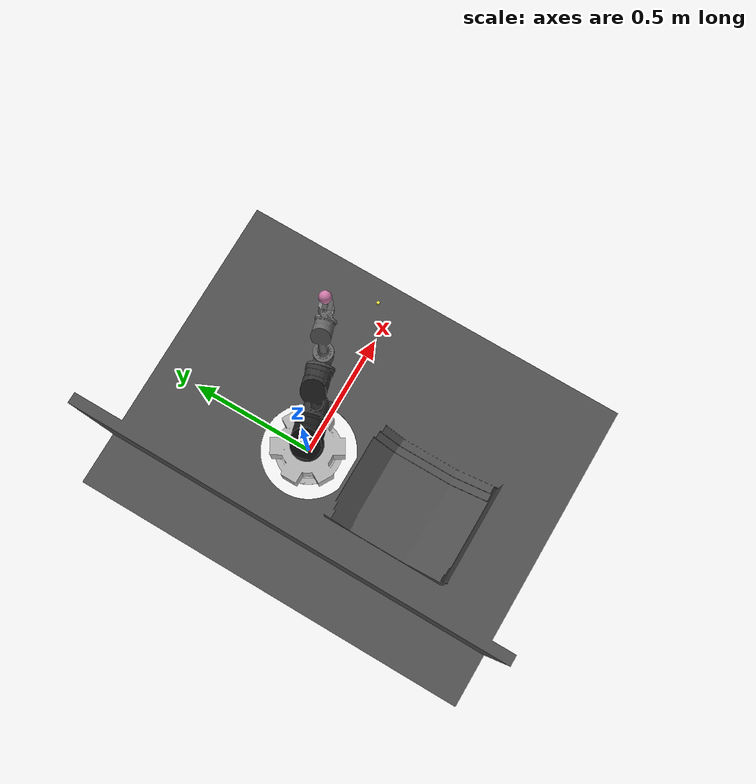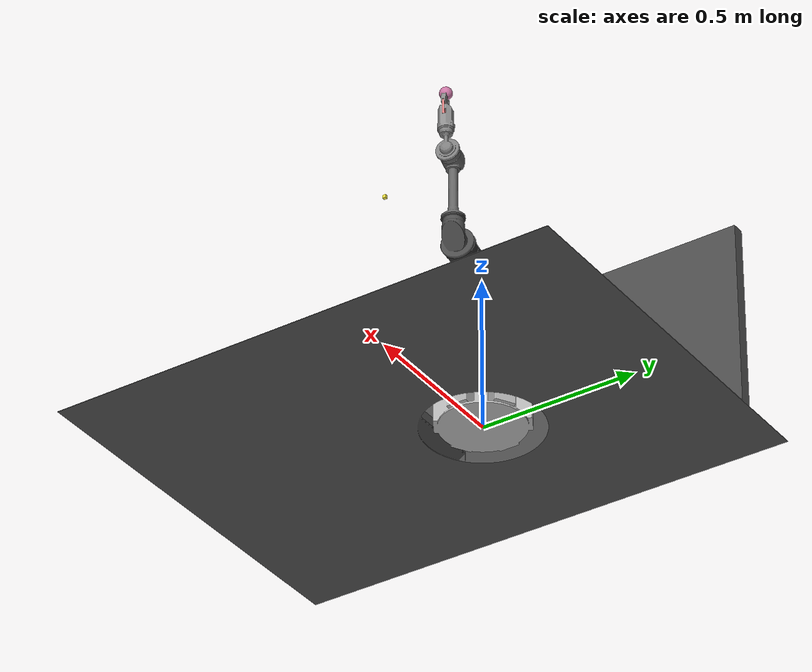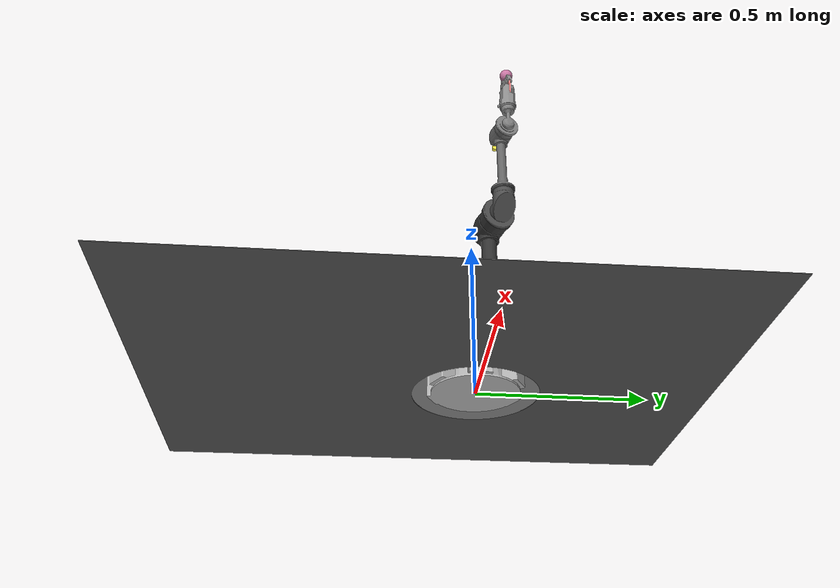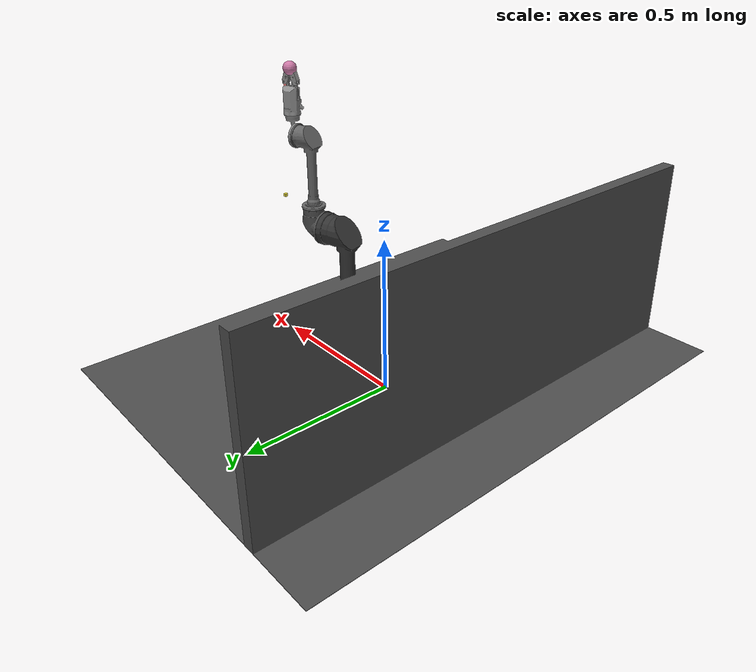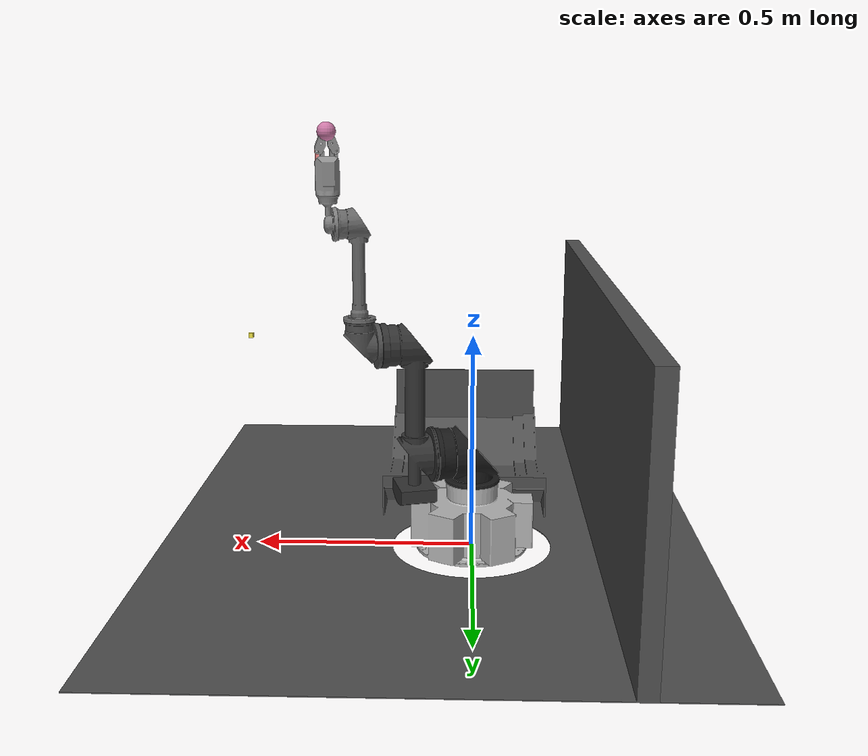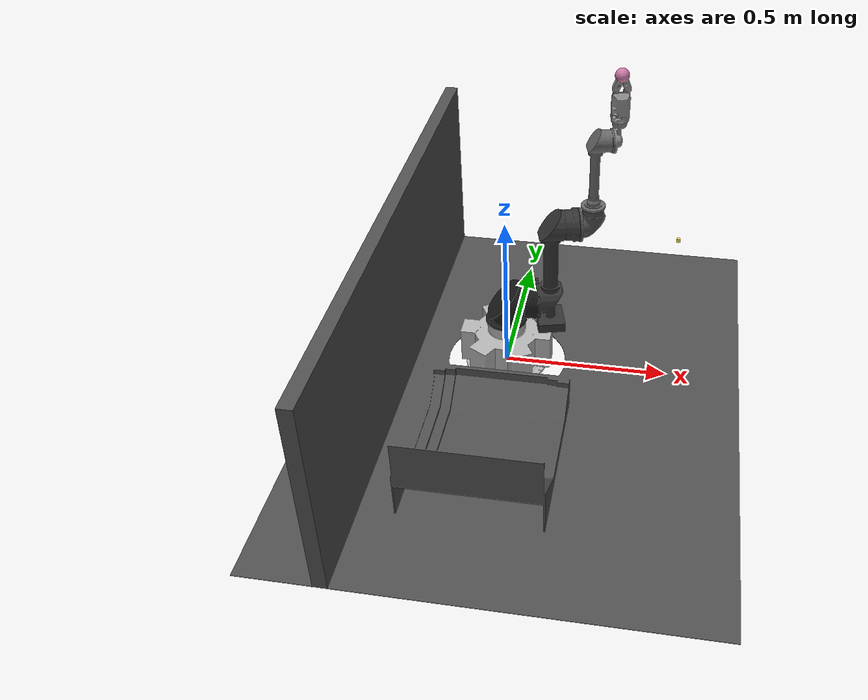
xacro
<?xml version="1.0"?>
<robot xmlns:xacro="http://ros.org/wiki/xacro"
       name="servo" >

  <!-- common stuff -->
  <xacro:include filename="$(find servo_description)/urdf/common.gazebo.xacro" />

  <!-- servo -->
  <xacro:include filename="$(find servo_description)/urdf/servo.urdf.xacro" />

  <!-- arm -->
  <xacro:servo_robot prefix="" joint_limited="true"
    a1_lower_limit="${-pi}" a1_upper_limit="${pi}"
    a2_lower_limit="${-pi}" a2_upper_limit="${pi}"
    a3_lower_limit="${-pi}" a3_upper_limit="${pi}"
    a4_lower_limit="${-pi}" a4_upper_limit="${pi}"
    a5_lower_limit="${-pi}" a5_upper_limit="${pi}"
    a6_lower_limit="${-pi}" a6_upper_limit="${pi}"
  />

  <link name="world" />

  <joint name="world_joint" type="fixed">
    <parent link="world" />
    <child link = "base_link" />
    <origin xyz="0.0 0.0 0.0" rpy="0.0 0.0 0.0" />
  </joint>

</robot>

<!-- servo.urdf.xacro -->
<robot xmlns:xacro="http://ros.org/wiki/xacro">
    <xacro:include filename="$(find servo_description)/urdf/servo.transmission.xacro" />
    <xacro:include filename="$(find servo_description)/urdf/servo.gazebo.xacro" />

    <!-- Inertia parameters -->
    <xacro:property name="base_mass" value="4.0" />  <!-- This mass might be incorrect -->
    <xacro:property name="a1_mass" value="3.7000" />
    <xacro:property name="a2_mass" value="8.3930" />
    <xacro:property name="a3_mass" value="2.2750" />
    <xacro:property name="a4_mass" value="1.2190" />
    <xacro:property name="a5_mass" value="1.2190" />
    <xacro:property name="a6_mass" value="0.1879" />

    <xacro:property name="servo_d1" value="0.089159" />
    <xacro:property name="servo_a2" value="-0.42500" />
    <xacro:property name="servo_a3" value="-0.39225" />
    <xacro:property name="servo_d4" value="0.10915" />
    <xacro:property name="servo_d5" value="0.09465" />
    <xacro:property name="servo_d6" value="0.0823" />

    <!-- Arbitrary offsets for shoulder/elbow joints -->
    <xacro:property name="shoulder_offset" value="0.13585" />  <!-- measured from model -->
    <xacro:property name="elbow_offset" value="-0.1197" /> <!-- measured from model -->

    <!-- link lengths used in model -->
    <xacro:property name="a1_height" value="${servo_d1}" />
    <xacro:property name="a2_length" value="${-servo_a2}" />
    <xacro:property name="a3_length" value="${-servo_a3}" />
    <xacro:property name="a4_length" value="${servo_d4}" />
    <xacro:property name="a5_length" value="${servo_d5}" />
    <xacro:property name="a6_length" value="${servo_d6}" />

    <xacro:property name="shoulder_radius" value="0.060" />   <!-- manually measured -->
    <xacro:property name="upper_arm_radius" value="0.054" />  <!-- manually measured -->
    <xacro:property name="elbow_radius" value="0.060" />      <!-- manually measured -->
    <xacro:property name="forearm_radius" value="0.040" />    <!-- manually measured -->
    <xacro:property name="wrist_radius" value="0.045" />      <!-- manually measured -->

    <xacro:macro name="cylinder_inertial" params="radius length mass *origin">
        <inertial>
            <mass value="${mass}" />
            <xacro:insert_block name="origin" />
            <inertia
                ixx="${0.0833333 * mass * (3 * radius * radius + length * length)}" ixy="0.0" ixz="0.0"
                iyy="${0.0833333 * mass * (3 * radius * radius + length * length)}" iyz="0.0"
                izz="${0.5 * mass * radius * radius}"
            />
        </inertial>
    </xacro:macro>

    <xacro:macro name="null_inertial" params="radius length mass *origin">
        <inertial>
            <mass value="${mass}" />
            <xacro:insert_block name="origin" />
            <inertia
                ixx="0" ixy="0" ixz="0"
                iyy="0" iyz="0"
                izz="0"
            />
        </inertial>
    </xacro:macro>

    <xacro:macro name="servo_robot" params="prefix joint_limited
        a1_lower_limit:=${-pi}    a1_upper_limit:=${pi}
        a2_lower_limit:=${-pi}    a2_upper_limit:=${pi}
        a3_lower_limit:=${-pi}    a3_upper_limit:=${pi}
        a4_lower_limit:=${-pi}    a4_upper_limit:=${pi}
        a5_lower_limit:=${-pi}    a5_upper_limit:=${pi}
        a6_lower_limit:=${-pi}    a6_upper_limit:=${pi}">

        <link name="${prefix}base_link" >
            <visual>
                <geometry>
                    <mesh filename="package://servo_description/meshes/base_link.stl" />
                </geometry>
                <material name="Black">
                    <color rgba="0.7 0.7 0.7 1.0"/>
                </material>
            </visual>
            <collision>
                <geometry>
                    <mesh filename="package://servo_description/meshes/base_link.stl" />
                </geometry>
            </collision>
            <xacro:null_inertial radius="0.06" length="0.05" mass="${base_mass}">
                <origin xyz="0.0 0.0 0.0" rpy="0 0 0" />
            </xacro:null_inertial>
        </link>

        <joint name="${prefix}a1_joint" type="revolute">
            <parent link="${prefix}base_link" />
            <child link = "${prefix}a1_link" />
            <origin xyz="0 0 0" rpy="-0.18123 -1.5708 0.18123" />
            <axis xyz="1 0 0" />
            <limit lower="-1.84" upper="0.78" effort="150.0" velocity="3.15"/>
<dynamics damping="0.0" friction="0.0"/>
        </joint>

        <link name="${prefix}a1_link">
            <visual>
                <geometry>
                    <mesh filename="package://servo_description/meshes/a1.stl" />
                </geometry>
                <material name="LightGrey">
                    <color rgba="0.1 0.1 0.1 1.0"/>
                </material>
            </visual>
            <collision>
                <geometry>
                    <mesh filename="package://servo_description/meshes/a1.stl" />
                </geometry>
            </collision>
            <xacro:null_inertial radius="0.06" length="0.15" mass="${a1_mass}">
                <origin xyz="0.0 0.0 0.0" rpy="0 0 0" />
            </xacro:null_inertial>
        </link>

        <joint name="${prefix}test_joint" type="fixed">
            <parent link="${prefix}world" />
            <child link = "${prefix}test_link" />
            <origin xyz="0 0 0" rpy="0.0 0.0 3.140" />
            <axis xyz="1 0 0" />
        </joint>

        <link name="${prefix}test_link">
            <visual>
                <material name="LightGrey">
                    <color rgba="0.31 0.31 0.31 1.0"/>
                </material>
                <geometry>
                    <mesh filename="package://servo_description/meshes/test.stl" scale="0.001 0.001 0.001"/>
                </geometry>
            </visual>
        </link>

        <joint name="${prefix}test_end_joint" type="fixed">
            <parent link="${prefix}world" />
            <child link = "${prefix}test_end_link" />
            <origin xyz="0.5 0.0 0.5" rpy="0.0 0.0 0.0" />
            <axis xyz="1 0 0" />
        </joint>
        <link name="${prefix}test_end_link">
            <visual>
                <geometry>
                    <box size="0.01 0.01 0.01"/>
                </geometry>
                <origin rpy="0 0 0" xyz="-0.0 0 0"/>
            </visual>
        </link>

        <joint name="${prefix}a2_joint" type="revolute">
            <parent link="${prefix}a1_link" />
            <child link = "${prefix}a2_link" />
            <origin xyz="0.23 0.023553 -0.087899" rpy="0 1.5708 0" />
            <axis xyz="0.96593 0.25882 0" />
            <limit lower="${a2_lower_limit}" upper="${a2_upper_limit}" effort="220.0" velocity="3.15"/>
        </joint>

        <link name="${prefix}a2_link">
            <visual>
                <geometry>
                    <mesh filename="package://servo_description/meshes/a2.stl" />
                </geometry>
                <material name="Black">
                    <color rgba="0.2 0.2 0.2 1.0"/>
                </material>
            </visual>
            <collision>
                <geometry>
                    <mesh filename="package://servo_description/meshes/a2.stl" />
                </geometry>
            </collision>
            <xacro:null_inertial radius="0.06" length="0.56" mass="${a2_mass}">
                <origin xyz="0.0 0.0 0.28" rpy="0 0 0" />
            </xacro:null_inertial>
        </link>

        <joint name="${prefix}a3_joint" type="revolute">
            <parent link="${prefix}a2_link" />
            <child link = "${prefix}a3_link" />
            <origin xyz="0.12 0.0303763 0.25899" rpy="0 0 3.14" />
            <axis xyz="-0.96593 -0.25882 0" />
            <limit lower="${-pi}" upper="${pi}" effort="250.0" velocity="3.15"/>
        </joint>

        <link name="${prefix}a3_link">
            <visual>
                <geometry>
                    <mesh filename="package://servo_description/meshes/a3.stl" />
                </geometry>
                <material name="LightGrey">
                    <color rgba="0.3 0.3 0.3 1.0"/>
                </material>
            </visual>
            <collision>
                <geometry>
                    <mesh filename="package://servo_description/meshes/a3.stl" />
                </geometry>
            </collision>
            <xacro:null_inertial radius="0.06" length="0.5" mass="${a3_mass}">
                <origin xyz="0.0 0.0 0.25" rpy="0 0 0" />
            </xacro:null_inertial>
        </link>

        <joint name="${prefix}a4_joint" type="revolute">
            <parent link="${prefix}a3_link" />
            <child link = "${prefix}a4_link" />
            <origin xyz="-0.040569 -0.01087 0.058" rpy="0 0 3.1415" />
            <axis xyz="0 0 1" />
            <limit lower="${-.001 * pi}" upper="${.001 * pi}" effort="28.0" velocity="3.2"/>
            <dynamics damping="0.0" friction="0.0"/>
        </joint>

        <link name="${prefix}a4_link">
            <visual>
                <geometry>
                    <mesh filename="package://servo_description/meshes/a4.stl" />
                </geometry>
                <material name="Green">
                    <color rgba="0.4 0.4 0.4 1.0"/>
                </material>
            </visual>
            <collision>
                <geometry>
                    <mesh filename="package://servo_description/meshes/a4.stl" />
                </geometry>
            </collision>
            <xacro:null_inertial radius="0.6" length="0.12" mass="${a4_mass}">
                <origin xyz="0.0 0.0 0.0" rpy="0 0 0" />
            </xacro:null_inertial>
        </link>

        <joint name="${prefix}a5_joint" type="revolute">
            <parent link="${prefix}a4_link" />
            <child link = "${prefix}a5_link" />
            <origin xyz="0.044433 0.011906 0.21" rpy="0 0 0" />
            <axis xyz="0.96593 0.25882 0" />
            <limit lower="-2" upper="2" effort="270.0" velocity="3.2"/>
            <dynamics damping="0.0" friction="0.0"/>
        </joint>
        <link name="${prefix}a5_link">
            <visual>
                <geometry>
                    <mesh filename="package://servo_description/meshes/a5.stl" />
                </geometry>
                <material name="Black">
                    <color rgba="0.5 0.5 0.5 1.0"/>
                </material>
            </visual>
            <collision>
                <geometry>
                    <mesh filename="package://servo_description/meshes/a5.stl" />
                </geometry>
            </collision>
            <xacro:null_inertial radius="0.6" length="0.12" mass="${a5_mass}">
                <origin xyz="0.0 0.0 0.0" rpy="0 0 0" />
            </xacro:null_inertial>
        </link>

        <joint name="${prefix}a6_joint" type="revolute">
            <parent link="${prefix}a5_link" />
            <child link = "${prefix}a6_link" />
            <origin xyz="0.016179 0.0043352 0.0615" rpy="0 0 0" />
            <axis xyz="0 0 1" />
            <limit lower="-0.2" upper="1.6" effort="280.0" velocity="3.2"/>
            <dynamics damping="0.0" friction="0.0"/>
        </joint>

        <link name="${prefix}a6_link">
            <xacro:null_inertial radius="0.6" length="0.12" mass="${a6_mass}">
                <origin xyz="0.0 0.0 0.0" rpy="0 0 0" />
            </xacro:null_inertial>
        </link>

        <link name="${prefix}grip_1_link">
        </link>

        <joint name="${prefix}panda_finger_joint1" type="prismatic">
            <parent link="${prefix}a6_link" />
            <child link = "${prefix}grip_1_link" />
            <origin xyz="-0.005 0.02 0.07" rpy="0.0 0.0 0.230" />
            <limit lower="0.0" upper="0.02" effort="28.0" velocity="3.2"/>
            <axis xyz="0 -1 0"/>
        </joint>

        <link name="${prefix}grip_2_link">
        </link>

        <joint name="${prefix}grip_2_joint" type="prismatic">
            <parent link="${prefix}a6_link" />
            <child link = "${prefix}grip_2_link" />
            <origin xyz="0.005 -0.02 0.07" rpy="0.0 0.0 0.230" />
            <limit lower="0.0" upper="0.02" effort="28.0" velocity="3.2"/>
            <axis xyz="0 1 0"/>
            <mimic joint="${prefix}panda_finger_joint1" />
        </joint>

        <link  name="v0_link"/>
        <joint name="v0_joint" type="fixed">
            <origin              xyz="0.0 0.0 0.13"              rpy="0.0 0.0 0.0" />
            <parent link="a6_link" />
            <child link="v0_link" />
            <axis xyz="0 1 0" />
        </joint>

          <link  name="v1_link"/>
          <joint  name="v1_joint" type="revolute">
            <origin  xyz="0 0 0" rpy="0 0 0" />
            <parent  link="v0_link" />
            <child   link="v1_link" />
            <axis    xyz="0 0 1" />
            <limit
              lower="-9"
              upper="9"
              effort="30"
              velocity="1" />
            <dynamics damping="0.0" friction="0.0" />
          </joint>

          <link  name="v2_link"/>
          <joint  name="v2_joint" type="revolute">
            <origin  xyz="0 0 0" rpy="0 0 0" />
            <parent  link="v1_link" />
            <child   link="v2_link" />
            <axis    xyz="0 1 0" />
            <limit              lower="-9"              upper="9"              effort="30"              velocity="1" />
            <dynamics damping="0.0" friction="0.0" />
          </joint>

        <joint name="${prefix}ee_fixed_joint" type="fixed">
            <parent link="${prefix}v2_link" />
            <child link = "${prefix}ee_link" />
            <origin xyz="0.0 0.0 0.0" rpy="0.0 0.0 0.230" />
        </joint>

        <link name="${prefix}ee_link">
            <visual>
                <origin rpy="0 0 0" xyz="0 0 0"/>
                <geometry>
                    <sphere radius="0.02"/>
                </geometry>
            </visual>
        </link>

    <joint name="${prefix}base_link_gripper" type="fixed">
        <parent link="${prefix}a6_link" />
        <child link = "${prefix}base_link_gripper" />
        <origin xyz="0.0 0.0 0.0" rpy="1.5707 0.0 0.262" />
    </joint>

  <link    name="base_link_gripper">
    <inertial>
      <origin        xyz="-0.000166704941642219 0.035580780632098 6.73552072336936E-05"        rpy="0 0 0" />
      <mass        value="0.102478231075252" />
      <inertia        ixx="3.28515117275925E-05"        ixy="-1.07245316057925E-06"        ixz="-1.12387680030389E-07"        iyy="9.77872727231259E-06"        iyz="-4.70521238287081E-07"        izz="2.56042558392517E-05" />
    </inertial>
    <visual>
      <origin        xyz="0 0 0"        rpy="0 0 0" />
      <geometry>
        <mesh          filename="package://servo_description/meshes/base_link_gripper.STL" />
      </geometry>
      <material        name="">
        <color          rgba="0.56078431372549 0.56078431372549 0.56078431372549 1" />
      </material>
    </visual>
    <collision>
      <origin        xyz="0 0 0"        rpy="0 0 0" />
      <geometry>
        <mesh          filename="package://servo_description/meshes/base_link_gripper.STL" />
      </geometry>
    </collision>
  </link>

  <link    name="r1_link">
    <inertial>
      <origin        xyz="0.00262657961614729 0.00962766754253007 0.00301231992734973"        rpy="0 0 0" />
      <mass        value="0.00405064649023123" />
      <inertia        ixx="0"        ixy="0"        ixz="0"        iyy="0"        iyz="0"        izz="0" />
    </inertial>
    <visual>
      <origin        xyz="0 0 0"        rpy="0 0 0" />
      <geometry>
        <mesh          filename="package://servo_description/meshes/r1_link.STL" />
      </geometry>
      <material        name="">
        <color          rgba="1.0 0.56078431372549 0.56078431372549 1" />
      </material>
    </visual>
    <collision>
      <origin        xyz="0 0 0"        rpy="0 0 0" />
      <geometry>
        <mesh          filename="package://servo_description/meshes/r1_link.STL"/>
      </geometry>
    </collision>
  </link>

  <joint    name="r1_joint"    type="revolute">
    <origin      xyz="0.0125136628167969 0.0500000000000014 -0.0027"      rpy="0 0 0" />
    <parent      link="base_link_gripper" />
    <child      link="r1_link" />
    <axis      xyz="-0.00467782381903998 0 0.999989058922305" />
    <limit              lower="-0.7"              upper="0"              effort="30"              velocity="1" />
  </joint>

  <link    name="s1_link">
    <inertial>
      <origin        xyz="-0.00870914608047762 0.0222753931706212 0.00301115730063501"        rpy="0 0 0" />
      <mass        value="0.00848466452095324" />
      <inertia        ixx="0"        ixy="0"        ixz="0"        iyy="0"        iyz="0"        izz="0" />
    </inertial>
    <visual>
      <origin        xyz="0 0 0"        rpy="0 0 0" />
      <geometry>
        <mesh          filename="package://servo_description/meshes/s1_link.STL" />
      </geometry>
      <material        name="">
        <color          rgba="0.56078431372549 0.56078431372549 0.56078431372549 1" />
      </material>
    </visual>
    <collision>
      <origin        xyz="0 0 0"        rpy="0 0 0" />
      <geometry>
        <mesh          filename="package://servo_description/meshes/s1_link.STL" />
      </geometry>
    </collision>
  </link>
  <joint    name="s1_joint"    type="revolute">
    <origin
      xyz="0.0077527860110237 0.0398609206341703 3.62665638615756E-05"      rpy="0 0 0" />
    <parent      link="r1_link" />
    <child      link="s1_link" />
    <axis      xyz="-0.00467782381903997 0 0.999989058922305" />
    <limit              lower="-9"              upper="9"              effort="30"              velocity="1" />
    <mimic joint="r1_joint" multiplier="-1" />
  </joint>

  <link    name="r2_link">
    <inertial>
      <origin        xyz="-0.00265988104749296 0.00958138871806024 0.00298758991491697"        rpy="0 0 0" />
      <mass        value="0.00408073037544732" />
      <inertia        ixx="0"        ixy="0"        ixz="0"        iyy="0"        iyz="0"        izz="0" />
    </inertial>
    <visual>
      <origin        xyz="0 0 0"        rpy="0 0 0" />
      <geometry>
        <mesh          filename="package://servo_description/meshes/r2_link.STL" scale="0.9 0.9 0.5"/>
      </geometry>
      <material        name="">
        <color          rgba="0.56078431372549 0.56078431372549 0.56078431372549 1" />
      </material>
    </visual>
    <collision>
      <origin        xyz="0 0 0"        rpy="0 0 0" />
      <geometry>
        <mesh          filename="package://servo_description/meshes/r2_link.STL" scale="0.9 0.9 0.5"/>
      </geometry>
    </collision>
  </link>
  <joint    name="r2_joint"    type="revolute">
    <origin      xyz="-0.0124860636562627 0.05 -0.0"      rpy="0 0 0" />
    <parent      link="base_link_gripper" />
    <child      link="r2_link" />
    <axis      xyz="-0.00467782381903998 0 0.999989058922305" />
    <limit              lower="-9"              upper="9"              effort="30"              velocity="1" />
    <mimic joint="r1_joint" multiplier="-1" />
  </joint>

  <link    name="s2_link">
    <inertial>
      <origin        xyz="0.00866544267478155 0.0222814904432761 0.00298870390748049"        rpy="0 0 0" />
      <mass        value="0.00848466452095324" />
      <inertia        ixx="0"        ixy="0"        ixz="0"        iyy="0"        iyz="0"        izz="0" />
    </inertial>
    <visual>
      <origin        xyz="0 0 0"        rpy="0 0 0" />
      <geometry>
        <mesh          filename="package://servo_description/meshes/s2_link.STL" />
      </geometry>
      <material        name="">
        <color          rgba="0.56078431372549 0.56078431372549 0.56078431372549 1" />
      </material>
    </visual>
    <collision>
      <origin        xyz="0 0 0"        rpy="0 0 0" />
      <geometry>
        <mesh          filename="package://servo_description/meshes/s2_link.STL" />
      </geometry>
    </collision>
  </link>
  <joint    name="s2_joint"    type="revolute">
    <origin      xyz="-0.00780822037978542 0.0398500986242302 -3.65258789093541E-05"      rpy="0 0 0" />
    <parent      link="r2_link" />
    <child      link="s2_link" />
    <axis      xyz="-0.00467782381903997 0 0.999989058922305" />
    <limit              lower="-9"              upper="9"              effort="30"              velocity="1" />
    <mimic joint="r1_joint" multiplier="1" />
  </joint>

  <link    name="p1_link">
    <inertial>
      <origin        xyz="0.00103559703418752 0.0161315105477872 0.00300487721706854"        rpy="0 0 0" />
      <mass        value="0.00189243766259435" />
      <inertia        ixx="0"        ixy="0"        ixz="0"        iyy="0"        iyz="0"        izz="0" />
    </inertial>
    <visual>
      <origin        xyz="0 0 0"        rpy="0 0 0" />
      <geometry>
        <mesh          filename="package://servo_description/meshes/p1_link.STL"/>
      </geometry>
      <material        name="">
        <color          rgba="0.56078431372549 0.56078431372549 0.56078431372549 1" />
      </material>
    </visual>
</link>
  <joint    name="p1_joint"    type="revolute">
    <origin      xyz="0.00901370111056682 0.072 -0.0029078673094494"      rpy="0 0 0" />
    <parent      link="base_link_gripper" />
    <child      link="p1_link" />
    <axis      xyz="-0.00467782381903997 0 0.999989058922305" />
    <limit              lower="-9"              upper="9"              effort="30"              velocity="1" />
    <mimic joint="r1_joint" multiplier="1" />
  </joint>

  <link    name="p2_link">
    <inertial>
      <origin        xyz="-0.00114816805964348 0.0161257896380144 0.00299466183693017"        rpy="0 0 0" />
      <mass        value="0.00189243766259435" />
      <inertia        ixx="0"        ixy="0"        ixz="0"        iyy="0"        iyz="0"        izz="0" />
    </inertial>
    <visual>
      <origin        xyz="0 0 0"        rpy="0 0 0" />
      <geometry>
        <mesh          filename="package://servo_description/meshes/p2_link.STL"/>
      </geometry>
      <material        name="">
        <color          rgba="0.56078431372549 0.56078431372549 0.56078431372549 1" />
      </material>
    </visual>
  </link>
  <joint    name="p2_joint"    type="revolute">
    <origin      xyz="-0.00898610195003464 0.072 -0.0029920681381921"      rpy="0 0 0" />
    <parent      link="base_link_gripper" />
    <child      link="p2_link" />
    <axis      xyz="-0.004677823685813 0 0.999989058922929" />
    <limit              lower="-9"              upper="9"              effort="30"              velocity="1" />
    <mimic joint="r1_joint" multiplier="-1" />
  </joint>

        <xacro:servo_arm_transmission prefix="${prefix}" />
        <xacro:servo_arm_gazebo prefix="${prefix}" />

    </xacro:macro>
</robot>
